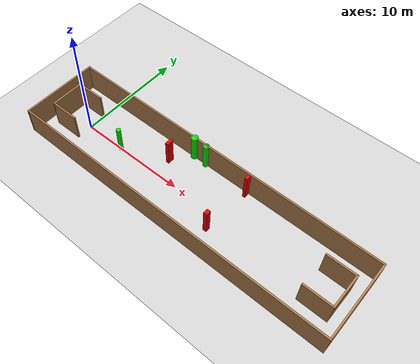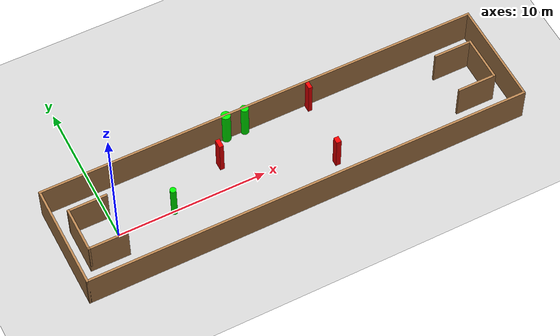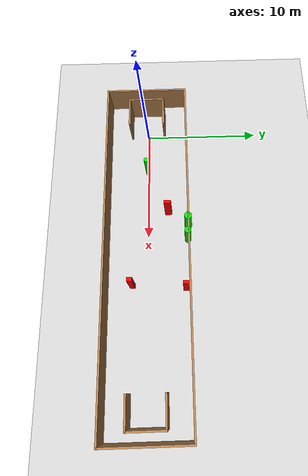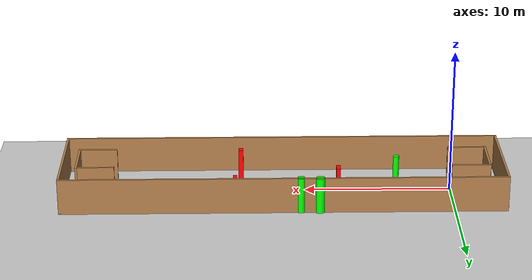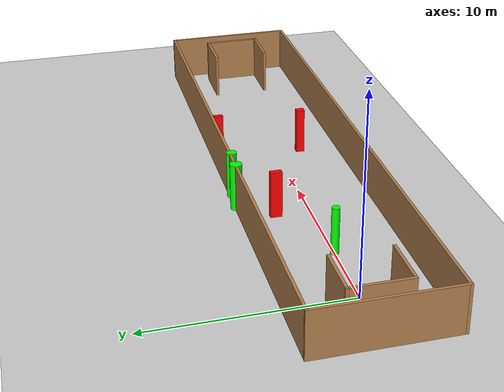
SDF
<sdf version="1.7">
 <world name="default">
  <light name="sun" type="directional">
   <pose>0 0 10 0 -0 0</pose>
   <diffuse>0.8 0.8 0.8 1</diffuse>
   <specular>0.2 0.2 0.2 1</specular>
   <attenuation>
    <range>1000</range>
    <constant>0.9</constant>
    <linear>0.01</linear>
    <quadratic>0.001</quadratic>
   </attenuation>
   <direction>-0.5 0.1 -0.9</direction>
   <spot><inner_angle>0</inner_angle><outer_angle>0</outer_angle><falloff>0</falloff></spot>
  </light>
  <model name="ground_plane">
   <static>1</static>
   <link name="link">
    <collision name="collision">
     <geometry><plane><normal>0 0 1</normal><size>100 100</size></plane></geometry>
     <surface>
      <contact><collide_bitmask>65535</collide_bitmask></contact>
      <friction><ode><mu>100</mu><mu2>50</mu2></ode></friction>
     </surface>
    </collision>
    <visual name="visual">
     <cast_shadows>0</cast_shadows>
     <geometry><plane><normal>0 0 1</normal><size>100 100</size></plane></geometry>
     <material>
      <script><uri>file://media/materials/scripts/gazebo.material</uri><name>Gazebo/Grey</name></script>
     </material>
    </visual>
   </link>
  </model>
  <gravity>0 0 -9.8</gravity>
  <magnetic_field>6e-06 2.3e-05 -4.2e-05</magnetic_field>
  <atmosphere type="adiabatic"/>
  <physics type="ode">
   <max_step_size>0.001</max_step_size>
   <real_time_factor>1</real_time_factor>
   <real_time_update_rate>1000</real_time_update_rate>
  </physics>
  <scene><ambient>0.4 0.4 0.4 1</ambient><background>0.7 0.7 0.7 1</background><shadows>1</shadows></scene>
  <spherical_coordinates>
   <surface_model>EARTH_WGS84</surface_model>
   <latitude_deg>0</latitude_deg>
   <longitude_deg>0</longitude_deg>
   <elevation>0</elevation>
   <heading_deg>0</heading_deg>
  </spherical_coordinates>
  <model name="my_base_walls">
   <link name="Wall_0">
    <collision name="Wall_0_Collision">
     <geometry><box><size>7.15 0.15 2.5</size></box></geometry>
     <pose>0 0 1.25 0 -0 0</pose>
    </collision>
    <visual name="Wall_0_Visual">
     <pose>0 0 1.25 0 -0 0</pose>
     <geometry><box><size>7.15 0.15 2.5</size></box></geometry>
     <material>
      <script><uri>file://media/materials/scripts/gazebo.material</uri><name>Gazebo/Wood</name></script>
      <ambient>1 1 1 1</ambient>
     </material>
     <meta><layer>0</layer></meta>
    </visual>
    <pose>-15 0 0 0 -0 1.5708</pose>
   </link>
   <link name="Wall_10">
    <collision name="Wall_10_Collision">
     <geometry><box><size>2.65 0.15 2.5</size></box></geometry>
     <pose>0 0 1.25 0 -0 0</pose>
    </collision>
    <visual name="Wall_10_Visual">
     <pose>0 0 1.25 0 -0 0</pose>
     <geometry><box><size>2.65 0.15 2.5</size></box></geometry>
     <material>
      <script><uri>file://media/materials/scripts/gazebo.material</uri><name>Gazebo/Wood</name></script>
      <ambient>1 1 1 1</ambient>
     </material>
     <meta><layer>0</layer></meta>
    </visual>
    <pose>-12.75 -1.5 0 0 -0 0</pose>
   </link>
   <link name="Wall_12">
    <collision name="Wall_12_Collision">
     <geometry><box><size>2.65 0.15 2.5</size></box></geometry>
     <pose>0 0 1.25 0 -0 0</pose>
    </collision>
    <visual name="Wall_12_Visual">
     <pose>0 0 1.25 0 -0 0</pose>
     <geometry><box><size>2.65 0.15 2.5</size></box></geometry>
     <material>
      <script><uri>file://media/materials/scripts/gazebo.material</uri><name>Gazebo/Wood</name></script>
      <ambient>1 1 1 1</ambient>
     </material>
     <meta><layer>0</layer></meta>
    </visual>
    <pose>-12.75 1.5 0 0 -0 0</pose>
   </link>
   <link name="Wall_14">
    <collision name="Wall_14_Collision">
     <geometry><box><size>3.15 0.15 2.5</size></box></geometry>
     <pose>0 0 1.25 0 -0 0</pose>
    </collision>
    <visual name="Wall_14_Visual">
     <pose>0 0 1.25 0 -0 0</pose>
     <geometry><box><size>3.15 0.15 2.5</size></box></geometry>
     <material>
      <script><uri>file://media/materials/scripts/gazebo.material</uri><name>Gazebo/Wood</name></script>
      <ambient>1 1 1 1</ambient>
     </material>
     <meta><layer>0</layer></meta>
    </visual>
    <pose>14 0 0 0 -0 -1.5708</pose>
   </link>
   <link name="Wall_15">
    <collision name="Wall_15_Collision">
     <geometry><box><size>2.65 0.15 2.5</size></box></geometry>
     <pose>0 0 1.25 0 -0 0</pose>
    </collision>
    <visual name="Wall_15_Visual">
     <pose>0 0 1.25 0 -0 0</pose>
     <geometry><box><size>2.65 0.15 2.5</size></box></geometry>
     <material>
      <script><uri>file://media/materials/scripts/gazebo.material</uri><name>Gazebo/Wood</name></script>
      <ambient>1 1 1 1</ambient>
     </material>
     <meta><layer>0</layer></meta>
    </visual>
    <pose>12.75 -1.5 0 0 -0 3.14159</pose>
   </link>
   <link name="Wall_17">
    <collision name="Wall_17_Collision">
     <geometry><box><size>2.65 0.15 2.5</size></box></geometry>
     <pose>0 0 1.25 0 -0 0</pose>
    </collision>
    <visual name="Wall_17_Visual">
     <pose>0 0 1.25 0 -0 0</pose>
     <geometry><box><size>2.65 0.15 2.5</size></box></geometry>
     <material>
      <script><uri>file://media/materials/scripts/gazebo.material</uri><name>Gazebo/Wood</name></script>
      <ambient>1 1 1 1</ambient>
     </material>
     <meta><layer>0</layer></meta>
    </visual>
    <pose>12.75 1.5 0 0 -0 3.14159</pose>
   </link>
   <link name="Wall_2">
    <collision name="Wall_2_Collision">
     <geometry><box><size>30.15 0.15 2.5</size></box></geometry>
     <pose>0 0 1.25 0 -0 0</pose>
    </collision>
    <visual name="Wall_2_Visual">
     <pose>0 0 1.25 0 -0 0</pose>
     <geometry><box><size>30.15 0.15 2.5</size></box></geometry>
     <material>
      <script><uri>file://media/materials/scripts/gazebo.material</uri><name>Gazebo/Wood</name></script>
      <ambient>1 1 1 1</ambient>
     </material>
     <meta><layer>0</layer></meta>
    </visual>
    <pose>-0 -3.5 0 0 -0 0</pose>
   </link>
   <link name="Wall_4">
    <collision name="Wall_4_Collision">
     <geometry><box><size>30.15 0.15 2.5</size></box></geometry>
     <pose>0 0 1.25 0 -0 0</pose>
    </collision>
    <visual name="Wall_4_Visual">
     <pose>0 0 1.25 0 -0 0</pose>
     <geometry><box><size>30.15 0.15 2.5</size></box></geometry>
     <material>
      <script><uri>file://media/materials/scripts/gazebo.material</uri><name>Gazebo/Wood</name></script>
      <ambient>1 1 1 1</ambient>
     </material>
     <meta><layer>0</layer></meta>
    </visual>
    <pose>-0 3.5 0 0 -0 0</pose>
   </link>
   <link name="Wall_6">
    <collision name="Wall_6_Collision">
     <geometry><box><size>7.15 0.15 2.5</size></box></geometry>
     <pose>0 0 1.25 0 -0 0</pose>
    </collision>
    <visual name="Wall_6_Visual">
     <pose>0 0 1.25 0 -0 0</pose>
     <geometry><box><size>7.15 0.15 2.5</size></box></geometry>
     <material>
      <script><uri>file://media/materials/scripts/gazebo.material</uri><name>Gazebo/Wood</name></script>
      <ambient>1 1 1 1</ambient>
     </material>
     <meta><layer>0</layer></meta>
    </visual>
    <pose>15 0 0 0 -0 -1.5708</pose>
   </link>
   <link name="Wall_9">
    <collision name="Wall_9_Collision">
     <geometry><box><size>3.15 0.15 2.5</size></box></geometry>
     <pose>0 0 1.25 0 -0 0</pose>
    </collision>
    <visual name="Wall_9_Visual">
     <pose>0 0 1.25 0 -0 0</pose>
     <geometry><box><size>3.15 0.15 2.5</size></box></geometry>
     <material>
      <script><uri>file://media/materials/scripts/gazebo.material</uri><name>Gazebo/Wood</name></script>
      <ambient>1 1 1 1</ambient>
     </material>
     <meta><layer>0</layer></meta>
    </visual>
    <pose>-14 0 0 0 -0 -1.5708</pose>
   </link>
   <static>1</static>
   <pose>11.5 0 0 0 -0 0</pose>
  </model>
  <model name="cylinder1">
   <static>1</static>
   <link name="link">
    <inertial>
     <mass>1</mass>
     <inertia><ixx>0.5</ixx><ixy>0</ixy><ixz>0</ixz><iyy>0.5</iyy><iyz>0</iyz><izz>1</izz></inertia>
    </inertial>
    <collision name="collision">
     <geometry><cylinder><radius>0.312862781135963</radius><length>2.5</length></cylinder></geometry>
    </collision>
    <visual name="visual">
     <geometry><cylinder><radius>0.312862781135963</radius><length>2.5</length></cylinder></geometry>
     <material>
      <ambient>0 1 0 1</ambient>
      <diffuse>0 1 0 1</diffuse>
      <specular>0.1 0.1 0.1 1</specular>
      <emissive>0 0 0 0</emissive>
     </material>
    </visual>
   </link>
   <pose>9.070263828235362 3.47062532624805 1.25 0 0 0</pose>
  </model>
  <model name="cylinder2">
   <static>1</static>
   <link name="link">
    <inertial>
     <mass>1</mass>
     <inertia><ixx>0.5</ixx><ixy>0</ixy><ixz>0</ixz><iyy>0.5</iyy><iyz>0</iyz><izz>1</izz></inertia>
    </inertial>
    <collision name="collision">
     <geometry><cylinder><radius>0.2668088491607836</radius><length>2.5</length></cylinder></geometry>
    </collision>
    <visual name="visual">
     <geometry><cylinder><radius>0.2668088491607836</radius><length>2.5</length></cylinder></geometry>
     <material>
      <ambient>0 1 0 1</ambient>
      <diffuse>0 1 0 1</diffuse>
      <specular>0.1 0.1 0.1 1</specular>
      <emissive>0 0 0 0</emissive>
     </material>
    </visual>
   </link>
   <pose>10.34516000422686 3.413856734536667 1.25 0 0 0</pose>
  </model>
  <model name="cylinder3">
   <static>1</static>
   <link name="link">
    <inertial>
     <mass>1</mass>
     <inertia><ixx>0.5</ixx><ixy>0</ixy><ixz>0</ixz><iyy>0.5</iyy><iyz>0</iyz><izz>1</izz></inertia>
    </inertial>
    <collision name="collision">
     <geometry><cylinder><radius>0.2009968268323</radius><length>2.5</length></cylinder></geometry>
    </collision>
    <visual name="visual">
     <geometry><cylinder><radius>0.2009968268323</radius><length>2.5</length></cylinder></geometry>
     <material>
      <ambient>0 1 0 1</ambient>
      <diffuse>0 1 0 1</diffuse>
      <specular>0.1 0.1 0.1 1</specular>
      <emissive>0 0 0 0</emissive>
     </material>
    </visual>
   </link>
   <pose>3.7601609653041734 -0.03140847687354853 1.25 0 0 0</pose>
  </model>
  <model name="box1">
   <static>1</static>
   <link name="link">
    <inertial>
     <mass>1</mass>
     <inertia><ixx>0.083</ixx><ixy>0</ixy><ixz>0</ixz><iyy>0.083</iyy><iyz>0</iyz><izz>0.083</izz></inertia>
    </inertial>
    <collision name="collision">
     <geometry><box><size>0.2906552547333078 0.5959405015210049 2.5</size></box></geometry>
    </collision>
    <visual name="visual">
     <geometry><box><size>0.2906552547333078 0.5959405015210049 2.5</size></box></geometry>
     <material>
      <ambient>1 0 0 1</ambient>
      <diffuse>1 0 0 1</diffuse>
      <specular>0.1 0.1 0.1 1</specular>
      <emissive>0 0 0 0</emissive>
     </material>
    </visual>
    <sensor name="my_contact" type="contact">
     <contact><collision>box_collision</collision><topic>__default_topic__</topic></contact>
    </sensor>
   </link>
   <pose>7.791720866000215 1.7599446192428907 1.25 0 0 0</pose>
  </model>
  <model name="box2">
   <static>1</static>
   <link name="link">
    <inertial>
     <mass>1</mass>
     <inertia><ixx>0.083</ixx><ixy>0</ixy><ixz>0</ixz><iyy>0.083</iyy><iyz>0</iyz><izz>0.083</izz></inertia>
    </inertial>
    <collision name="collision">
     <geometry><box><size>0.2623770782702761 0.4769472760297246 2.5</size></box></geometry>
    </collision>
    <visual name="visual">
     <geometry><box><size>0.2623770782702761 0.4769472760297246 2.5</size></box></geometry>
     <material>
      <ambient>1 0 0 1</ambient>
      <diffuse>1 0 0 1</diffuse>
      <specular>0.1 0.1 0.1 1</specular>
      <emissive>0 0 0 0</emissive>
     </material>
    </visual>
    <sensor name="my_contact" type="contact">
     <contact><collision>box_collision</collision><topic>__default_topic__</topic></contact>
    </sensor>
   </link>
   <pose>14.74932576173518 3.1600115765706027 1.25 0 0 0</pose>
  </model>
  <model name="box3">
   <static>1</static>
   <link name="link">
    <inertial>
     <mass>1</mass>
     <inertia><ixx>0.083</ixx><ixy>0</ixy><ixz>0</ixz><iyy>0.083</iyy><iyz>0</iyz><izz>0.083</izz></inertia>
    </inertial>
    <collision name="collision">
     <geometry><box><size>0.3347815171531553 0.43514288651867217 2.5</size></box></geometry>
    </collision>
    <visual name="visual">
     <geometry><box><size>0.3347815171531553 0.43514288651867217 2.5</size></box></geometry>
     <material>
      <ambient>1 0 0 1</ambient>
      <diffuse>1 0 0 1</diffuse>
      <specular>0.1 0.1 0.1 1</specular>
      <emissive>0 0 0 0</emissive>
     </material>
    </visual>
    <sensor name="my_contact" type="contact">
     <contact><collision>box_collision</collision><topic>__default_topic__</topic></contact>
    </sensor>
   </link>
   <pose>14.386182509926902 -1.3414468628878158 1.25 0 0 0</pose>
  </model>
 </world>
</sdf>
